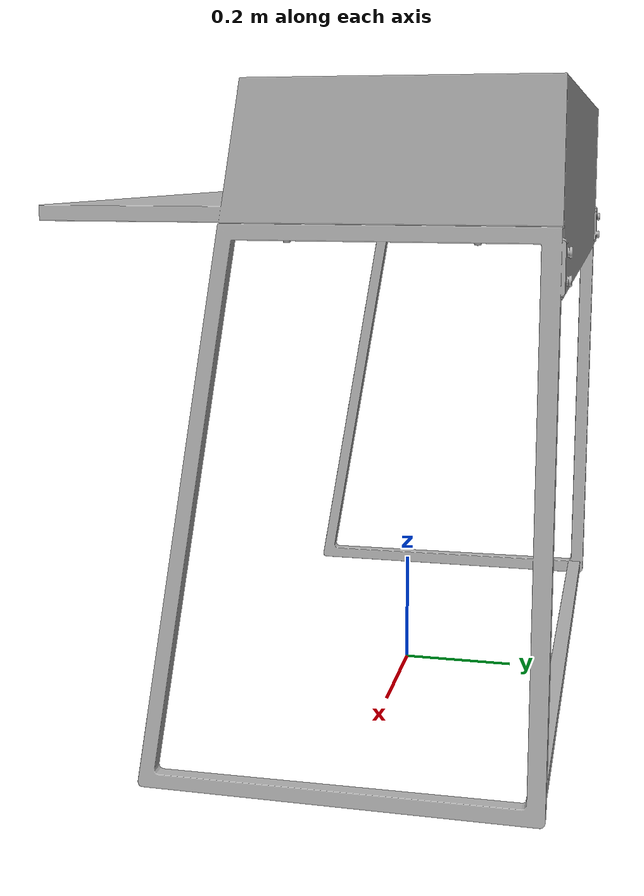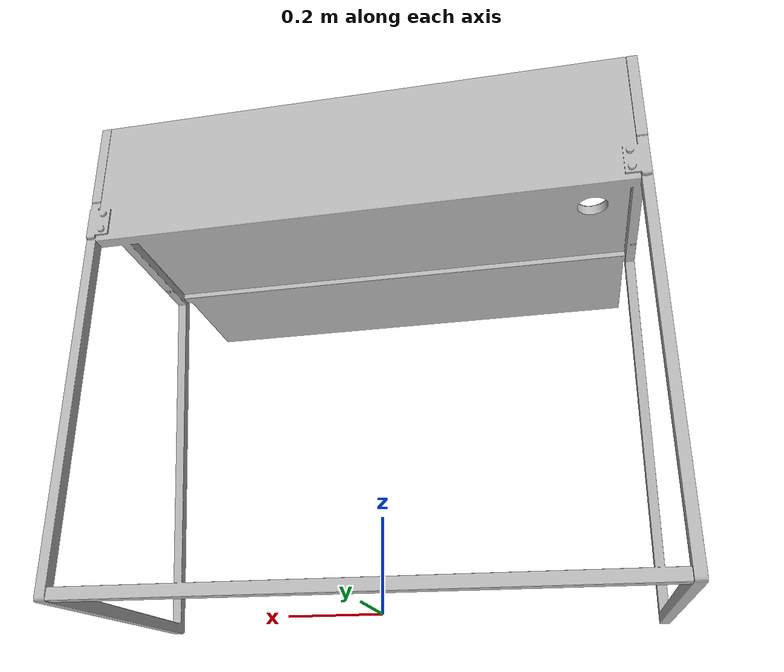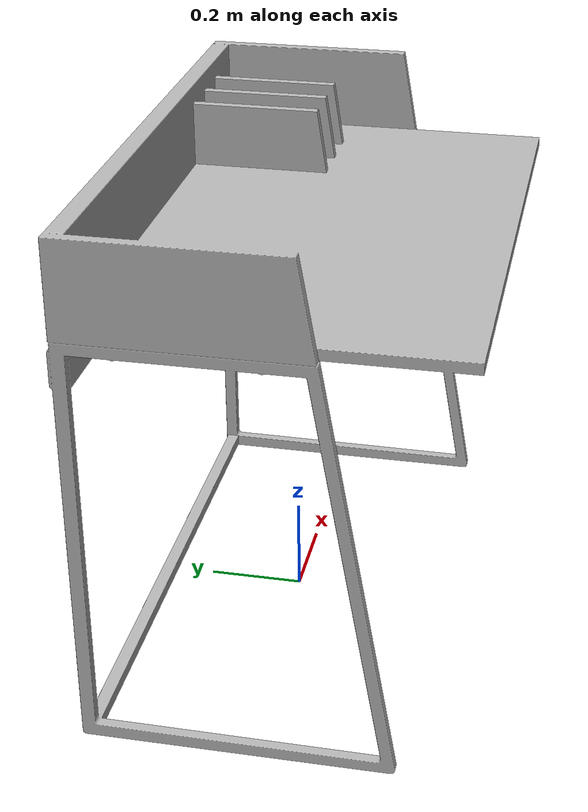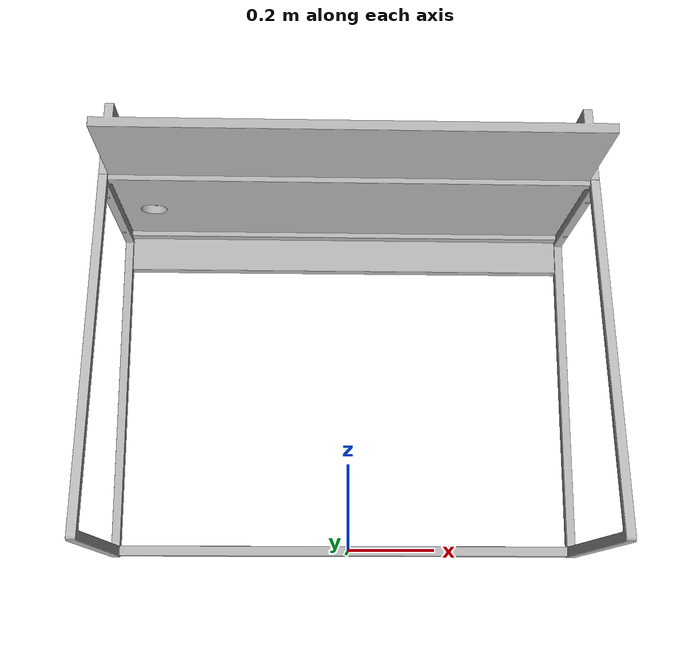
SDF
<sdf version="1.6">
	<model name="HomeOfficeDesks_O7d77e3c4f189_lod0">
		<link name="main_link">
			<visual name="visual_RootNode">
				<geometry>
					<mesh>
						<uri>model://HomeOfficeDesks_O7d77e3c4f189_lod0/meshes/visual_RootNode.dae</uri>
					</mesh>
				</geometry>
			</visual>
			<collision name="collision_RootNode_lod0_0">
				<geometry>
					<mesh>
						<uri>model://HomeOfficeDesks_O7d77e3c4f189_lod0/meshes/collision_RootNode_lod0_0.dae</uri>
					</mesh>
				</geometry>
			</collision>
		</link>
	</model>
</sdf>
